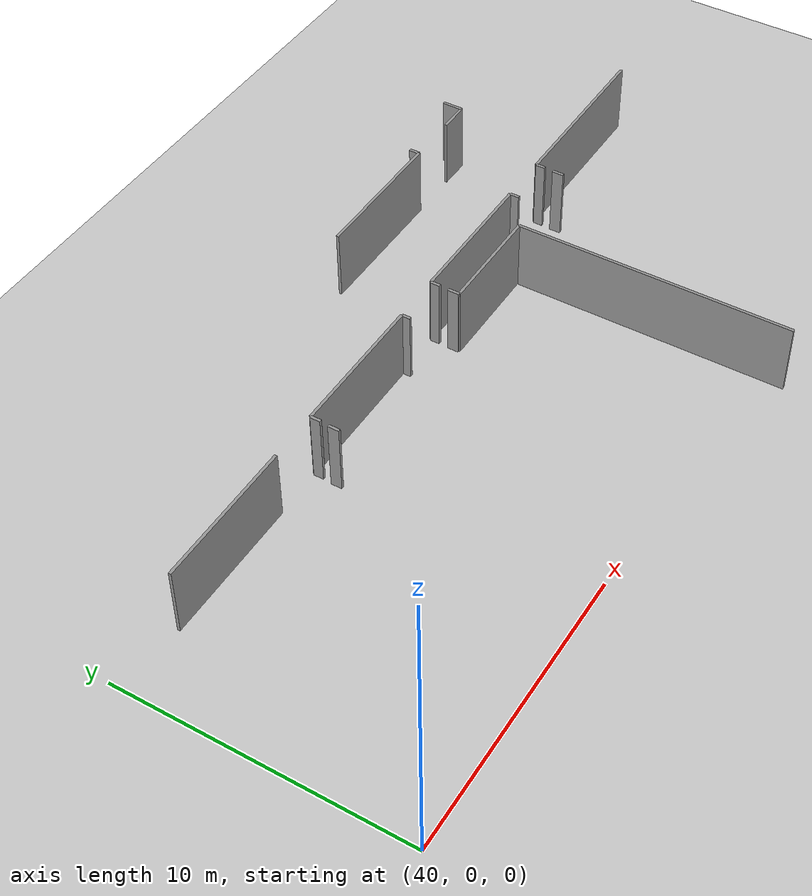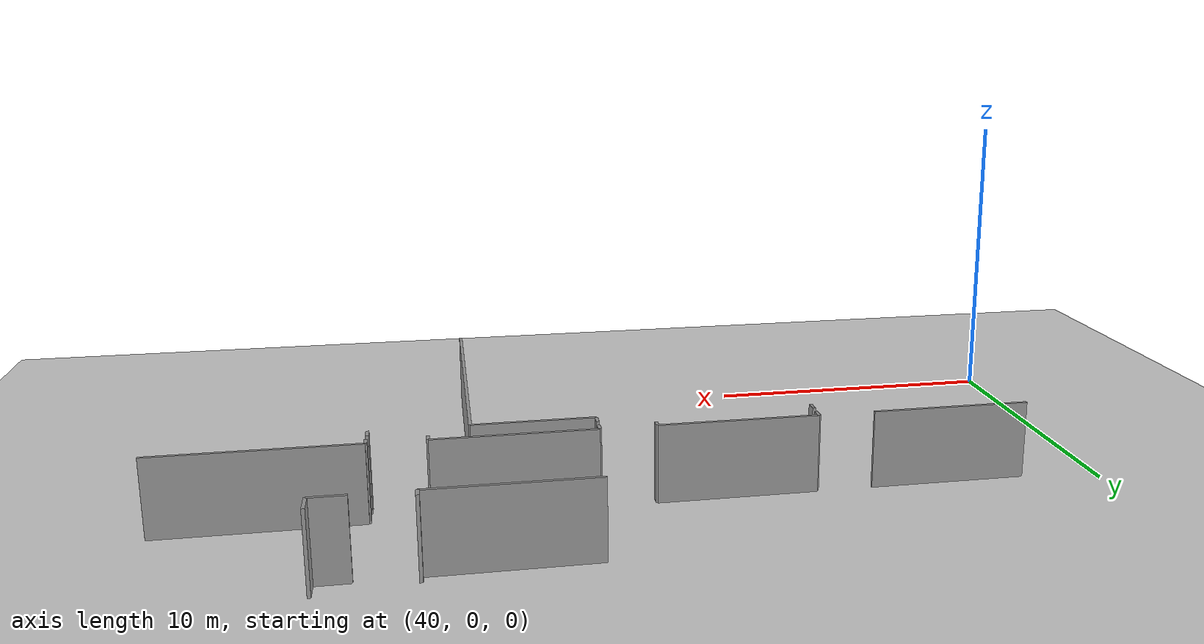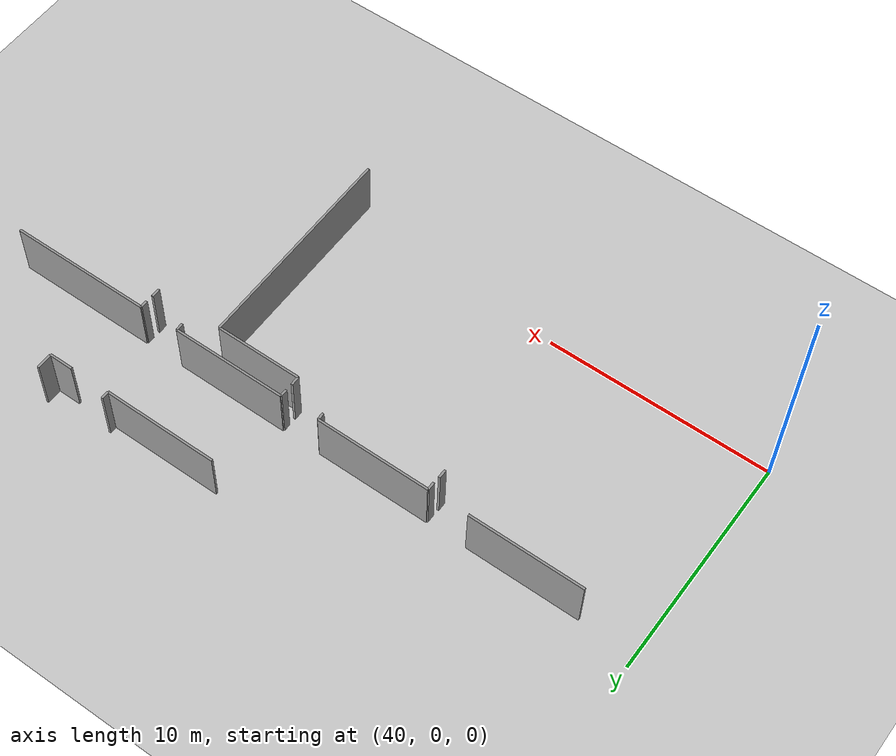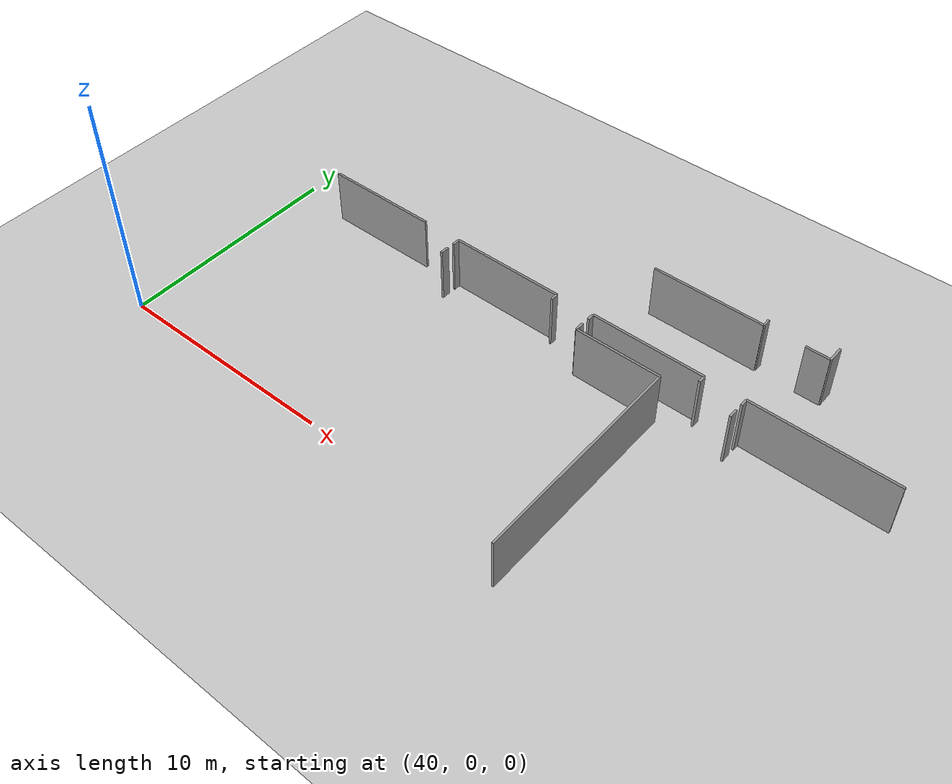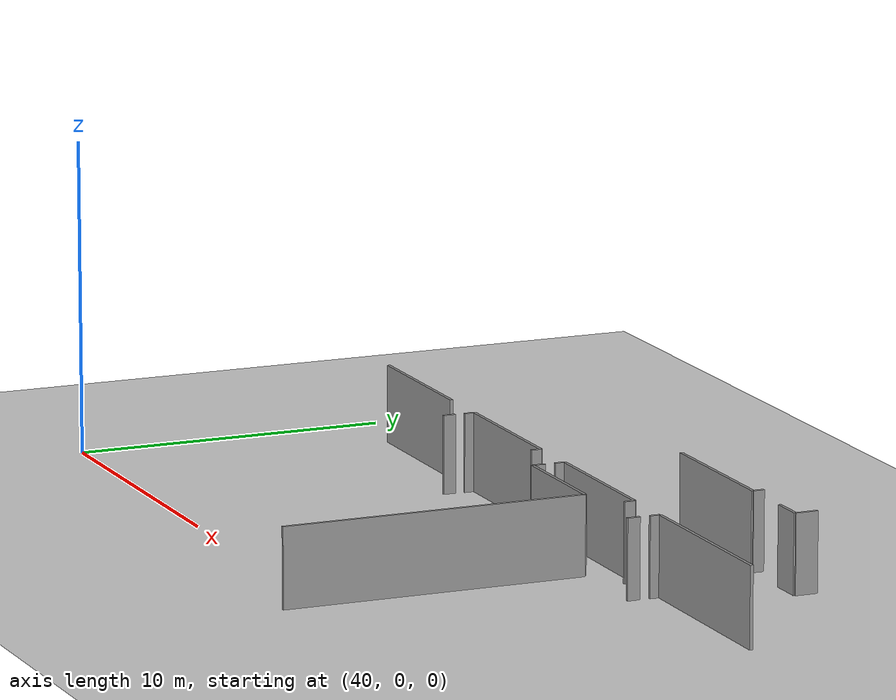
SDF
<sdf version="1.6">
 <world name="default">
  <model name="ground_plane">
   <static>1</static>
   <link name="link">
    <collision name="collision">
     <geometry><plane><normal>0 0 1</normal><size>100 100</size></plane></geometry>
     <surface><friction><ode><mu>100</mu><mu2>50</mu2></ode></friction></surface>
    </collision>
    <visual name="visual">
     <cast_shadows>0</cast_shadows>
     <geometry><plane><normal>0 0 1</normal><size>100 100</size></plane></geometry>
     <material>
      <script><uri>file://media/materials/scripts/gazebo.material</uri><name>Gazebo/Grey</name></script>
     </material>
    </visual>
   </link>
  </model>
  <model name="0510032196_A_40_1_104">
   <static>1</static>
   <link name="Wall_148">
    <collision name="Wall_148_Collision">
     <geometry><box><size>0.399572975446 0.1 2.5</size></box></geometry>
     <pose>0.199786487723 0 1.25 0 0 0</pose>
    </collision>
    <visual name="Wall_148_Visual">
     <pose>0.199786487723 0 1.25 0 0 0</pose>
     <geometry><box><size>0.399572975446 0.1 2.5</size></box></geometry>
     <material>
      <script><uri>file://media/materials/scripts/gazebo.material</uri><name>Gazebo/Grey</name></script>
      <ambient>1 1 1 1</ambient>
     </material>
    </visual>
    <pose>128.327360073 -15.3613186925 0 0 0 -1.57079632679</pose>
   </link>
   <link name="Wall_158">
    <collision name="Wall_158_Collision">
     <geometry><box><size>0.393599715317 0.1 2.5</size></box></geometry>
     <pose>0.196799857658 0 1.25 0 0 0</pose>
    </collision>
    <visual name="Wall_158_Visual">
     <pose>0.196799857658 0 1.25 0 0 0</pose>
     <geometry><box><size>0.393599715317 0.1 2.5</size></box></geometry>
     <material>
      <script><uri>file://media/materials/scripts/gazebo.material</uri><name>Gazebo/Grey</name></script>
      <ambient>1 1 1 1</ambient>
     </material>
    </visual>
    <pose>121.492425398 -15.3625895989 0 0 0 -1.57079632679</pose>
   </link>
   <link name="Wall_159">
    <collision name="Wall_159_Collision">
     <geometry><box><size>3.82034466982 0.1 2.5</size></box></geometry>
     <pose>1.91017233491 0 1.25 0 0 0</pose>
    </collision>
    <visual name="Wall_159_Visual">
     <pose>1.91017233491 0 1.25 0 0 0</pose>
     <geometry><box><size>3.82034466982 0.1 2.5</size></box></geometry>
     <material>
      <script><uri>file://media/materials/scripts/gazebo.material</uri><name>Gazebo/Grey</name></script>
      <ambient>1 1 1 1</ambient>
     </material>
    </visual>
    <pose>121.492425398 -15.7561893142 0 0 0 0.0</pose>
   </link>
   <link name="Wall_160">
    <collision name="Wall_160_Collision">
     <geometry><box><size>9.60741700981 0.1 2.5</size></box></geometry>
     <pose>4.80370850491 0 1.25 0 0 0</pose>
    </collision>
    <visual name="Wall_160_Visual">
     <pose>4.80370850491 0 1.25 0 0 0</pose>
     <geometry><box><size>9.60741700981 0.1 2.5</size></box></geometry>
     <material>
      <script><uri>file://media/materials/scripts/gazebo.material</uri><name>Gazebo/Grey</name></script>
      <ambient>1 1 1 1</ambient>
     </material>
    </visual>
    <pose>125.312770068 -15.7561893142 0 0 0 -1.57079632679</pose>
   </link>
   <link name="Wall_166">
    <collision name="Wall_166_Collision">
     <geometry><box><size>0.387245183265 0.1 2.5</size></box></geometry>
     <pose>0.193622591632 0 1.25 0 0 0</pose>
    </collision>
    <visual name="Wall_166_Visual">
     <pose>0.193622591632 0 1.25 0 0 0</pose>
     <geometry><box><size>0.387245183265 0.1 2.5</size></box></geometry>
     <material>
      <script><uri>file://media/materials/scripts/gazebo.material</uri><name>Gazebo/Grey</name></script>
      <ambient>1 1 1 1</ambient>
     </material>
    </visual>
    <pose>114.676554319 -15.3708504906 0 0 0 -1.57079632679</pose>
   </link>
   <link name="Wall_467">
    <collision name="Wall_467_Collision">
     <geometry><box><size>5.02770575975 0.1 2.5</size></box></geometry>
     <pose>2.51385287987 0 1.25 0 0 0</pose>
    </collision>
    <visual name="Wall_467_Visual">
     <pose>2.51385287987 0 1.25 0 0 0</pose>
     <geometry><box><size>5.02770575975 0.1 2.5</size></box></geometry>
     <material>
      <script><uri>file://media/materials/scripts/gazebo.material</uri><name>Gazebo/Grey</name></script>
      <ambient>1 1 1 1</ambient>
     </material>
    </visual>
    <pose>121.824131971 -11.0125311372 0 0 0 0.0</pose>
   </link>
   <link name="Wall_468">
    <collision name="Wall_468_Collision">
     <geometry><box><size>0.354201616593 0.1 2.5</size></box></geometry>
     <pose>0.177100808296 0 1.25 0 0 0</pose>
    </collision>
    <visual name="Wall_468_Visual">
     <pose>0.177100808296 0 1.25 0 0 0</pose>
     <geometry><box><size>0.354201616593 0.1 2.5</size></box></geometry>
     <material>
      <script><uri>file://media/materials/scripts/gazebo.material</uri><name>Gazebo/Grey</name></script>
      <ambient>1 1 1 1</ambient>
     </material>
    </visual>
    <pose>126.851837731 -11.0125311372 0 0 0 1.57079632679</pose>
   </link>
   <link name="Wall_470">
    <collision name="Wall_470_Collision">
     <geometry><box><size>1.06756138478 0.1 2.5</size></box></geometry>
     <pose>0.53378069239 0 1.25 0 0 0</pose>
    </collision>
    <visual name="Wall_470_Visual">
     <pose>0.53378069239 0 1.25 0 0 0</pose>
     <geometry><box><size>1.06756138478 0.1 2.5</size></box></geometry>
     <material>
      <script><uri>file://media/materials/scripts/gazebo.material</uri><name>Gazebo/Grey</name></script>
      <ambient>1 1 1 1</ambient>
     </material>
    </visual>
    <pose>128.637461237 -10.9947384475 0 0 0 0.0</pose>
   </link>
   <link name="Wall_471">
    <collision name="Wall_471_Collision">
     <geometry><box><size>0.716791215495 0.1 2.5</size></box></geometry>
     <pose>0.358395607747 0 1.25 0 0 0</pose>
    </collision>
    <visual name="Wall_471_Visual">
     <pose>0.358395607747 0 1.25 0 0 0</pose>
     <geometry><box><size>0.716791215495 0.1 2.5</size></box></geometry>
     <material>
      <script><uri>file://media/materials/scripts/gazebo.material</uri><name>Gazebo/Grey</name></script>
      <ambient>1 1 1 1</ambient>
     </material>
    </visual>
    <pose>129.705022622 -10.9947384475 0 0 0 1.57079632679</pose>
   </link>
   <link name="Wall_475">
    <collision name="Wall_475_Collision">
     <geometry><box><size>6.24650500737 0.1 2.5</size></box></geometry>
     <pose>3.12325250369 0 1.25 0 0 0</pose>
    </collision>
    <visual name="Wall_475_Visual">
     <pose>3.12325250369 0 1.25 0 0 0</pose>
     <geometry><box><size>6.24650500737 0.1 2.5</size></box></geometry>
     <material>
      <script><uri>file://media/materials/scripts/gazebo.material</uri><name>Gazebo/Grey</name></script>
      <ambient>1 1 1 1</ambient>
     </material>
    </visual>
    <pose>134.59547049 -14.717477505 0 0 0 3.14159265359</pose>
   </link>
   <link name="Wall_476">
    <collision name="Wall_476_Collision">
     <geometry><box><size>0.332596207615 0.1 2.5</size></box></geometry>
     <pose>0.166298103808 0 1.25 0 0 0</pose>
    </collision>
    <visual name="Wall_476_Visual">
     <pose>0.166298103808 0 1.25 0 0 0</pose>
     <geometry><box><size>0.332596207615 0.1 2.5</size></box></geometry>
     <material>
      <script><uri>file://media/materials/scripts/gazebo.material</uri><name>Gazebo/Grey</name></script>
      <ambient>1 1 1 1</ambient>
     </material>
    </visual>
    <pose>128.348965482 -14.717477505 0 0 0 -1.57079632679</pose>
   </link>
   <link name="Wall_477">
    <collision name="Wall_477_Collision">
     <geometry><box><size>0.332596207615 0.1 2.5</size></box></geometry>
     <pose>0.166298103808 0 1.25 0 0 0</pose>
    </collision>
    <visual name="Wall_477_Visual">
     <pose>0.166298103808 0 1.25 0 0 0</pose>
     <geometry><box><size>0.332596207615 0.1 2.5</size></box></geometry>
     <material>
      <script><uri>file://media/materials/scripts/gazebo.material</uri><name>Gazebo/Grey</name></script>
      <ambient>1 1 1 1</ambient>
     </material>
    </visual>
    <pose>126.560800163 -15.0500737126 0 0 0 1.57079632679</pose>
   </link>
   <link name="Wall_478">
    <collision name="Wall_478_Collision">
     <geometry><box><size>5.04804026232 0.1 2.5</size></box></geometry>
     <pose>2.52402013116 0 1.25 0 0 0</pose>
    </collision>
    <visual name="Wall_478_Visual">
     <pose>2.52402013116 0 1.25 0 0 0</pose>
     <geometry><box><size>5.04804026232 0.1 2.5</size></box></geometry>
     <material>
      <script><uri>file://media/materials/scripts/gazebo.material</uri><name>Gazebo/Grey</name></script>
      <ambient>1 1 1 1</ambient>
     </material>
    </visual>
    <pose>126.560800163 -14.717477505 0 0 0 3.14159265359</pose>
   </link>
   <link name="Wall_479">
    <collision name="Wall_479_Collision">
     <geometry><box><size>0.325987494281 0.1 2.5</size></box></geometry>
     <pose>0.16299374714 0 1.25 0 0 0</pose>
    </collision>
    <visual name="Wall_479_Visual">
     <pose>0.16299374714 0 1.25 0 0 0</pose>
     <geometry><box><size>0.325987494281 0.1 2.5</size></box></geometry>
     <material>
      <script><uri>file://media/materials/scripts/gazebo.material</uri><name>Gazebo/Grey</name></script>
      <ambient>1 1 1 1</ambient>
     </material>
    </visual>
    <pose>121.5127599 -14.717477505 0 0 0 -1.57079632679</pose>
   </link>
   <link name="Wall_480">
    <collision name="Wall_480_Collision">
     <geometry><box><size>0.314295155305 0.1 2.5</size></box></geometry>
     <pose>0.157147577652 0 1.25 0 0 0</pose>
    </collision>
    <visual name="Wall_480_Visual">
     <pose>0.157147577652 0 1.25 0 0 0</pose>
     <geometry><box><size>0.314295155305 0.1 2.5</size></box></geometry>
     <material>
      <script><uri>file://media/materials/scripts/gazebo.material</uri><name>Gazebo/Grey</name></script>
      <ambient>1 1 1 1</ambient>
     </material>
    </visual>
    <pose>119.76017996 -15.0434649992 0 0 0 1.57079632679</pose>
   </link>
   <link name="Wall_481">
    <collision name="Wall_481_Collision">
     <geometry><box><size>5.0467693559 0.1 2.5</size></box></geometry>
     <pose>2.52338467795 0 1.25 0 0 0</pose>
    </collision>
    <visual name="Wall_481_Visual">
     <pose>2.52338467795 0 1.25 0 0 0</pose>
     <geometry><box><size>5.0467693559 0.1 2.5</size></box></geometry>
     <material>
      <script><uri>file://media/materials/scripts/gazebo.material</uri><name>Gazebo/Grey</name></script>
      <ambient>1 1 1 1</ambient>
     </material>
    </visual>
    <pose>119.76017996 -14.7291698439 0 0 0 3.14159265359</pose>
   </link>
   <link name="Wall_482">
    <collision name="Wall_482_Collision">
     <geometry><box><size>0.349753444156 0.1 2.5</size></box></geometry>
     <pose>0.174876722078 0 1.25 0 0 0</pose>
    </collision>
    <visual name="Wall_482_Visual">
     <pose>0.174876722078 0 1.25 0 0 0</pose>
     <geometry><box><size>0.349753444156 0.1 2.5</size></box></geometry>
     <material>
      <script><uri>file://media/materials/scripts/gazebo.material</uri><name>Gazebo/Grey</name></script>
      <ambient>1 1 1 1</ambient>
     </material>
    </visual>
    <pose>114.713410604 -14.7291698439 0 0 0 -1.57079632679</pose>
   </link>
   <link name="Wall_484">
    <collision name="Wall_484_Collision">
     <geometry><box><size>5.04804026232 0.1 2.5</size></box></geometry>
     <pose>2.52402013116 0 1.25 0 0 0</pose>
    </collision>
    <visual name="Wall_484_Visual">
     <pose>2.52402013116 0 1.25 0 0 0</pose>
     <geometry><box><size>5.04804026232 0.1 2.5</size></box></geometry>
     <material>
      <script><uri>file://media/materials/scripts/gazebo.material</uri><name>Gazebo/Grey</name></script>
      <ambient>1 1 1 1</ambient>
     </material>
    </visual>
    <pose>112.930328911 -14.7361598292 0 0 0 3.14159265359</pose>
   </link>
   <pose>-65.45 24.1679019877 0 0 0 0</pose>
  </model>
 </world>
</sdf>
